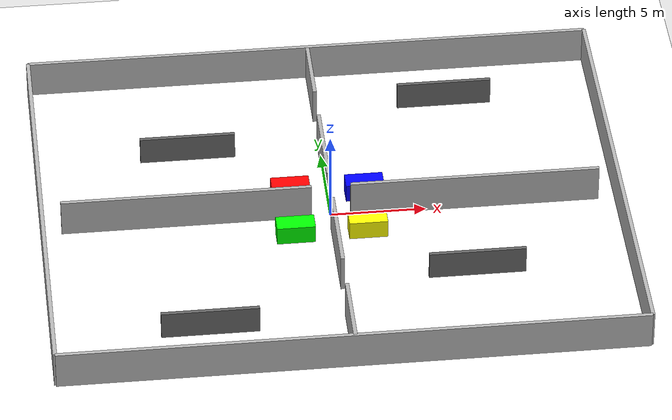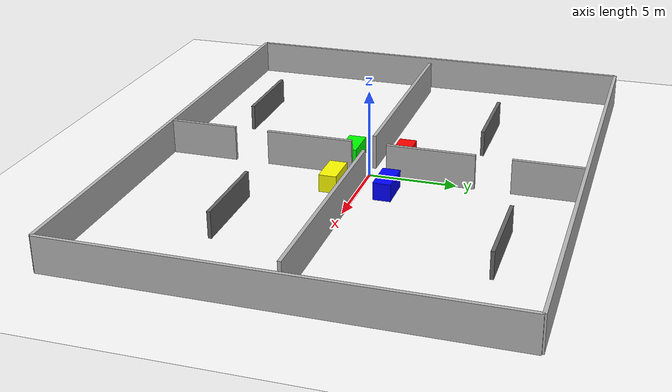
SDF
<sdf version='1.10'>
  <world name='warehouse_world'>
    <plugin name='gz::sim::systems::Physics' filename='gz-sim-physics-system'/>
    <plugin name='gz::sim::systems::UserCommands' filename='gz-sim-user-commands-system'/>
    <plugin name='gz::sim::systems::SceneBroadcaster' filename='gz-sim-scene-broadcaster-system'/>
    <gravity>0 0 -9.8000000000000007</gravity>
    <magnetic_field>5.5644999999999998e-06 2.2875799999999999e-05 -4.2388400000000002e-05</magnetic_field>
    <atmosphere type='adiabatic'/>
    <physics type='ode'>
      <max_step_size>0.001</max_step_size>
      <real_time_factor>1</real_time_factor>
      <real_time_update_rate>1000</real_time_update_rate>
    </physics>
    <scene>
      <ambient>0.400000006 0.400000006 0.400000006 1</ambient>
      <background>0.699999988 0.699999988 0.699999988 1</background>
      <shadows>true</shadows>
    </scene>
    <model name='white_floor'>
      <static>true</static>
      <pose>0 0 0 0 0 0</pose>
      <link name='floor_link'>
        <collision name='collision'>
          <geometry>
            <plane>
              <normal>0 0 1</normal>
              <size>40 40</size>
            </plane>
          </geometry>
          <surface>
            <friction>
              <ode/>
            </friction>
            <bounce/>
            <contact/>
          </surface>
        </collision>
        <visual name='visual'>
          <geometry>
            <plane>
              <normal>0 0 1</normal>
              <size>40 40</size>
            </plane>
          </geometry>
          <material>
            <ambient>1 1 1 1</ambient>
            <diffuse>1 1 1 1</diffuse>
            <specular>0.100000001 0.100000001 0.100000001 1</specular>
          </material>
        </visual>
        <pose>0 0 0 0 0 0</pose>
        <inertial>
          <pose>0 0 0 0 0 0</pose>
          <mass>1</mass>
          <inertia>
            <ixx>1</ixx>
            <ixy>0</ixy>
            <ixz>0</ixz>
            <iyy>1</iyy>
            <iyz>0</iyz>
            <izz>1</izz>
          </inertia>
        </inertial>
        <enable_wind>false</enable_wind>
      </link>
      <self_collide>false</self_collide>
    </model>
    <model name='wall_north'>
      <static>true</static>
      <pose>0 12 1 0 0 0</pose>
      <link name='link'>
        <collision name='collision'>
          <geometry>
            <box>
              <size>30 0.20000000000000001 2</size>
            </box>
          </geometry>
          <surface>
            <friction>
              <ode/>
            </friction>
            <bounce/>
            <contact/>
          </surface>
        </collision>
        <visual name='visual'>
          <geometry>
            <box>
              <size>30 0.20000000000000001 2</size>
            </box>
          </geometry>
        </visual>
        <pose>0 0 0 0 0 0</pose>
        <inertial>
          <pose>0 0 0 0 0 0</pose>
          <mass>1</mass>
          <inertia>
            <ixx>1</ixx>
            <ixy>0</ixy>
            <ixz>0</ixz>
            <iyy>1</iyy>
            <iyz>0</iyz>
            <izz>1</izz>
          </inertia>
        </inertial>
        <enable_wind>false</enable_wind>
      </link>
      <self_collide>false</self_collide>
    </model>
    <model name='wall_south'>
      <static>true</static>
      <pose>0 -12 1 0 0 0</pose>
      <link name='link'>
        <collision name='collision'>
          <geometry>
            <box>
              <size>30 0.20000000000000001 2</size>
            </box>
          </geometry>
          <surface>
            <friction>
              <ode/>
            </friction>
            <bounce/>
            <contact/>
          </surface>
        </collision>
        <visual name='visual'>
          <geometry>
            <box>
              <size>30 0.20000000000000001 2</size>
            </box>
          </geometry>
        </visual>
        <pose>0 0 0 0 0 0</pose>
        <inertial>
          <pose>0 0 0 0 0 0</pose>
          <mass>1</mass>
          <inertia>
            <ixx>1</ixx>
            <ixy>0</ixy>
            <ixz>0</ixz>
            <iyy>1</iyy>
            <iyz>0</iyz>
            <izz>1</izz>
          </inertia>
        </inertial>
        <enable_wind>false</enable_wind>
      </link>
      <self_collide>false</self_collide>
    </model>
    <model name='wall_east'>
      <static>true</static>
      <pose>15 0 1 0 0 0</pose>
      <link name='link'>
        <collision name='collision'>
          <geometry>
            <box>
              <size>0.20000000000000001 24 2</size>
            </box>
          </geometry>
          <surface>
            <friction>
              <ode/>
            </friction>
            <bounce/>
            <contact/>
          </surface>
        </collision>
        <visual name='visual'>
          <geometry>
            <box>
              <size>0.20000000000000001 24 2</size>
            </box>
          </geometry>
        </visual>
        <pose>0 0 0 0 0 0</pose>
        <inertial>
          <pose>0 0 0 0 0 0</pose>
          <mass>1</mass>
          <inertia>
            <ixx>1</ixx>
            <ixy>0</ixy>
            <ixz>0</ixz>
            <iyy>1</iyy>
            <iyz>0</iyz>
            <izz>1</izz>
          </inertia>
        </inertial>
        <enable_wind>false</enable_wind>
      </link>
      <self_collide>false</self_collide>
    </model>
    <model name='wall_west'>
      <static>true</static>
      <pose>-15 0 1 0 0 0</pose>
      <link name='link'>
        <collision name='collision'>
          <geometry>
            <box>
              <size>0.20000000000000001 24 2</size>
            </box>
          </geometry>
          <surface>
            <friction>
              <ode/>
            </friction>
            <bounce/>
            <contact/>
          </surface>
        </collision>
        <visual name='visual'>
          <geometry>
            <box>
              <size>0.20000000000000001 24 2</size>
            </box>
          </geometry>
        </visual>
        <pose>0 0 0 0 0 0</pose>
        <inertial>
          <pose>0 0 0 0 0 0</pose>
          <mass>1</mass>
          <inertia>
            <ixx>1</ixx>
            <ixy>0</ixy>
            <ixz>0</ixz>
            <iyy>1</iyy>
            <iyz>0</iyz>
            <izz>1</izz>
          </inertia>
        </inertial>
        <enable_wind>false</enable_wind>
      </link>
      <self_collide>false</self_collide>
    </model>
    <model name='mid_wall_left'>
      <static>true</static>
      <pose>-7.4949016571044922 0 1 0 0 0</pose>
      <link name='link'>
        <collision name='collision'>
          <geometry>
            <box>
              <size>13 0.20000000000000001 2</size>
            </box>
          </geometry>
          <surface>
            <friction>
              <ode/>
            </friction>
            <bounce/>
            <contact/>
          </surface>
        </collision>
        <visual name='visual'>
          <geometry>
            <box>
              <size>13 0.20000000000000001 2</size>
            </box>
          </geometry>
          <material>
            <ambient>0.699999988 0.699999988 0.699999988 1</ambient>
            <diffuse>0.699999988 0.699999988 0.699999988 1</diffuse>
          </material>
        </visual>
        <pose>0 0 0 0 0 0</pose>
        <inertial>
          <pose>0 0 0 0 0 0</pose>
          <mass>1</mass>
          <inertia>
            <ixx>1</ixx>
            <ixy>0</ixy>
            <ixz>0</ixz>
            <iyy>1</iyy>
            <iyz>0</iyz>
            <izz>1</izz>
          </inertia>
        </inertial>
        <enable_wind>false</enable_wind>
      </link>
      <self_collide>false</self_collide>
    </model>
    <model name='mid_wall_right'>
      <static>true</static>
      <pose>7.5518913269042969 0 1 0 0 0</pose>
      <link name='link'>
        <collision name='collision'>
          <geometry>
            <box>
              <size>13 0.20000000000000001 2</size>
            </box>
          </geometry>
          <surface>
            <friction>
              <ode/>
            </friction>
            <bounce/>
            <contact/>
          </surface>
        </collision>
        <visual name='visual'>
          <geometry>
            <box>
              <size>13 0.20000000000000001 2</size>
            </box>
          </geometry>
          <material>
            <ambient>0.699999988 0.699999988 0.699999988 1</ambient>
            <diffuse>0.699999988 0.699999988 0.699999988 1</diffuse>
          </material>
        </visual>
        <pose>0 0 0 0 0 0</pose>
        <inertial>
          <pose>0 0 0 0 0 0</pose>
          <mass>1</mass>
          <inertia>
            <ixx>1</ixx>
            <ixy>0</ixy>
            <ixz>0</ixz>
            <iyy>1</iyy>
            <iyz>0</iyz>
            <izz>1</izz>
          </inertia>
        </inertial>
        <enable_wind>false</enable_wind>
      </link>
      <self_collide>false</self_collide>
    </model>
    <model name='mid_vertical_top'>
      <static>true</static>
      <pose>0 10 1 0 0 0</pose>
      <link name='link'>
        <collision name='collision'>
          <geometry>
            <box>
              <size>0.20000000000000001 4 2</size>
            </box>
          </geometry>
          <surface>
            <friction>
              <ode/>
            </friction>
            <bounce/>
            <contact/>
          </surface>
        </collision>
        <visual name='visual'>
          <geometry>
            <box>
              <size>0.20000000000000001 4 2</size>
            </box>
          </geometry>
          <material>
            <ambient>0.699999988 0.699999988 0.699999988 1</ambient>
            <diffuse>0.699999988 0.699999988 0.699999988 1</diffuse>
          </material>
        </visual>
        <pose>0 0 0 0 0 0</pose>
        <inertial>
          <pose>0 0 0 0 0 0</pose>
          <mass>1</mass>
          <inertia>
            <ixx>1</ixx>
            <ixy>0</ixy>
            <ixz>0</ixz>
            <iyy>1</iyy>
            <iyz>0</iyz>
            <izz>1</izz>
          </inertia>
        </inertial>
        <enable_wind>false</enable_wind>
      </link>
      <self_collide>false</self_collide>
    </model>
    <model name='mid_vertical_upper'>
      <static>true</static>
      <pose>0 3.5 1 0 0 0</pose>
      <link name='link'>
        <collision name='collision'>
          <geometry>
            <box>
              <size>0.20000000000000001 5 2</size>
            </box>
          </geometry>
          <surface>
            <friction>
              <ode/>
            </friction>
            <bounce/>
            <contact/>
          </surface>
        </collision>
        <visual name='visual'>
          <geometry>
            <box>
              <size>0.20000000000000001 5 2</size>
            </box>
          </geometry>
          <material>
            <ambient>0.699999988 0.699999988 0.699999988 1</ambient>
            <diffuse>0.699999988 0.699999988 0.699999988 1</diffuse>
          </material>
        </visual>
        <pose>0 0 0 0 0 0</pose>
        <inertial>
          <pose>0 0 0 0 0 0</pose>
          <mass>1</mass>
          <inertia>
            <ixx>1</ixx>
            <ixy>0</ixy>
            <ixz>0</ixz>
            <iyy>1</iyy>
            <iyz>0</iyz>
            <izz>1</izz>
          </inertia>
        </inertial>
        <enable_wind>false</enable_wind>
      </link>
      <self_collide>false</self_collide>
    </model>
    <model name='mid_vertical_lower'>
      <static>true</static>
      <pose>0 -3.5278303623199463 1 0 0 0</pose>
      <link name='link'>
        <collision name='collision'>
          <geometry>
            <box>
              <size>0.20000000000000001 5 2</size>
            </box>
          </geometry>
          <surface>
            <friction>
              <ode/>
            </friction>
            <bounce/>
            <contact/>
          </surface>
        </collision>
        <visual name='visual'>
          <geometry>
            <box>
              <size>0.20000000000000001 5 2</size>
            </box>
          </geometry>
          <material>
            <ambient>0.699999988 0.699999988 0.699999988 1</ambient>
            <diffuse>0.699999988 0.699999988 0.699999988 1</diffuse>
          </material>
        </visual>
        <pose>0 0 0 0 0 0</pose>
        <inertial>
          <pose>0 0 0 0 0 0</pose>
          <mass>1</mass>
          <inertia>
            <ixx>1</ixx>
            <ixy>0</ixy>
            <ixz>0</ixz>
            <iyy>1</iyy>
            <iyz>0</iyz>
            <izz>1</izz>
          </inertia>
        </inertial>
        <enable_wind>false</enable_wind>
      </link>
      <self_collide>false</self_collide>
    </model>
    <model name='mid_vertical_bottom'>
      <static>true</static>
      <pose>0 -10 1 0 0 0</pose>
      <link name='link'>
        <collision name='collision'>
          <geometry>
            <box>
              <size>0.20000000000000001 4 2</size>
            </box>
          </geometry>
          <surface>
            <friction>
              <ode/>
            </friction>
            <bounce/>
            <contact/>
          </surface>
        </collision>
        <visual name='visual'>
          <geometry>
            <box>
              <size>0.20000000000000001 4 2</size>
            </box>
          </geometry>
          <material>
            <ambient>0.699999988 0.699999988 0.699999988 1</ambient>
            <diffuse>0.699999988 0.699999988 0.699999988 1</diffuse>
          </material>
        </visual>
        <pose>0 0 0 0 0 0</pose>
        <inertial>
          <pose>0 0 0 0 0 0</pose>
          <mass>1</mass>
          <inertia>
            <ixx>1</ixx>
            <ixy>0</ixy>
            <ixz>0</ixz>
            <iyy>1</iyy>
            <iyz>0</iyz>
            <izz>1</izz>
          </inertia>
        </inertial>
        <enable_wind>false</enable_wind>
      </link>
      <self_collide>false</self_collide>
    </model>
    <model name='blocker_tl'>
      <static>true</static>
      <pose>-7 5.5 0.75 0 0 0</pose>
      <link name='link'>
        <collision name='collision'>
          <geometry>
            <box>
              <size>5 0.20000000000000001 1.5</size>
            </box>
          </geometry>
          <surface>
            <friction>
              <ode/>
            </friction>
            <bounce/>
            <contact/>
          </surface>
        </collision>
        <visual name='visual'>
          <geometry>
            <box>
              <size>5 0.20000000000000001 1.5</size>
            </box>
          </geometry>
          <material>
            <ambient>0.400000006 0.400000006 0.400000006 1</ambient>
            <diffuse>0.400000006 0.400000006 0.400000006 1</diffuse>
          </material>
        </visual>
        <pose>0 0 0 0 0 0</pose>
        <inertial>
          <pose>0 0 0 0 0 0</pose>
          <mass>1</mass>
          <inertia>
            <ixx>1</ixx>
            <ixy>0</ixy>
            <ixz>0</ixz>
            <iyy>1</iyy>
            <iyz>0</iyz>
            <izz>1</izz>
          </inertia>
        </inertial>
        <enable_wind>false</enable_wind>
      </link>
      <self_collide>false</self_collide>
    </model>
    <model name='blocker_tr'>
      <static>true</static>
      <pose>7 8.8000000000000007 0.75 0 0 0</pose>
      <link name='link'>
        <collision name='collision'>
          <geometry>
            <box>
              <size>5 0.20000000000000001 1.5</size>
            </box>
          </geometry>
          <surface>
            <friction>
              <ode/>
            </friction>
            <bounce/>
            <contact/>
          </surface>
        </collision>
        <visual name='visual'>
          <geometry>
            <box>
              <size>5 0.20000000000000001 1.5</size>
            </box>
          </geometry>
          <material>
            <ambient>0.400000006 0.400000006 0.400000006 1</ambient>
            <diffuse>0.400000006 0.400000006 0.400000006 1</diffuse>
          </material>
        </visual>
        <pose>0 0 0 0 0 0</pose>
        <inertial>
          <pose>0 0 0 0 0 0</pose>
          <mass>1</mass>
          <inertia>
            <ixx>1</ixx>
            <ixy>0</ixy>
            <ixz>0</ixz>
            <iyy>1</iyy>
            <iyz>0</iyz>
            <izz>1</izz>
          </inertia>
        </inertial>
        <enable_wind>false</enable_wind>
      </link>
      <self_collide>false</self_collide>
    </model>
    <model name='blocker_bl'>
      <static>true</static>
      <pose>-7 -8.8000000000000007 0.75 0 0 0</pose>
      <link name='link'>
        <collision name='collision'>
          <geometry>
            <box>
              <size>5 0.20000000000000001 1.5</size>
            </box>
          </geometry>
          <surface>
            <friction>
              <ode/>
            </friction>
            <bounce/>
            <contact/>
          </surface>
        </collision>
        <visual name='visual'>
          <geometry>
            <box>
              <size>5 0.20000000000000001 1.5</size>
            </box>
          </geometry>
          <material>
            <ambient>0.400000006 0.400000006 0.400000006 1</ambient>
            <diffuse>0.400000006 0.400000006 0.400000006 1</diffuse>
          </material>
        </visual>
        <pose>0 0 0 0 0 0</pose>
        <inertial>
          <pose>0 0 0 0 0 0</pose>
          <mass>1</mass>
          <inertia>
            <ixx>1</ixx>
            <ixy>0</ixy>
            <ixz>0</ixz>
            <iyy>1</iyy>
            <iyz>0</iyz>
            <izz>1</izz>
          </inertia>
        </inertial>
        <enable_wind>false</enable_wind>
      </link>
      <self_collide>false</self_collide>
    </model>
    <model name='blocker_br'>
      <static>true</static>
      <pose>7 -5.5 0.75 0 0 0</pose>
      <link name='link'>
        <collision name='collision'>
          <geometry>
            <box>
              <size>5 0.20000000000000001 1.5</size>
            </box>
          </geometry>
          <surface>
            <friction>
              <ode/>
            </friction>
            <bounce/>
            <contact/>
          </surface>
        </collision>
        <visual name='visual'>
          <geometry>
            <box>
              <size>5 0.20000000000000001 1.5</size>
            </box>
          </geometry>
          <material>
            <ambient>0.400000006 0.400000006 0.400000006 1</ambient>
            <diffuse>0.400000006 0.400000006 0.400000006 1</diffuse>
          </material>
        </visual>
        <pose>0 0 0 0 0 0</pose>
        <inertial>
          <pose>0 0 0 0 0 0</pose>
          <mass>1</mass>
          <inertia>
            <ixx>1</ixx>
            <ixy>0</ixy>
            <ixz>0</ixz>
            <iyy>1</iyy>
            <iyz>0</iyz>
            <izz>1</izz>
          </inertia>
        </inertial>
        <enable_wind>false</enable_wind>
      </link>
      <self_collide>false</self_collide>
    </model>
    <model name='shelf_red'>
      <static>true</static>
      <pose>-1.9542900323867798 1.4638376235961914 0.65965098142623901 0 0 0</pose>
      <link name='link'>
        <collision name='collision'>
          <geometry>
            <box>
              <size>2 1 1</size>
            </box>
          </geometry>
          <surface>
            <friction>
              <ode/>
            </friction>
            <bounce/>
            <contact/>
          </surface>
        </collision>
        <visual name='visual'>
          <geometry>
            <box>
              <size>2 1 1</size>
            </box>
          </geometry>
          <material>
            <ambient>1 0 0 1</ambient>
            <diffuse>1 0 0 1</diffuse>
          </material>
        </visual>
        <pose>0 0 0 0 0 0</pose>
        <inertial>
          <pose>0 0 0 0 0 0</pose>
          <mass>1</mass>
          <inertia>
            <ixx>1</ixx>
            <ixy>0</ixy>
            <ixz>0</ixz>
            <iyy>1</iyy>
            <iyz>0</iyz>
            <izz>1</izz>
          </inertia>
        </inertial>
        <enable_wind>false</enable_wind>
      </link>
      <self_collide>false</self_collide>
    </model>
    <model name='shelf_blue'>
      <static>true</static>
      <pose>1.933419942855835 1.5431298017501831 0.5 0 0 0</pose>
      <link name='link'>
        <collision name='collision'>
          <geometry>
            <box>
              <size>2 1 1</size>
            </box>
          </geometry>
          <surface>
            <friction>
              <ode/>
            </friction>
            <bounce/>
            <contact/>
          </surface>
        </collision>
        <visual name='visual'>
          <geometry>
            <box>
              <size>2 1 1</size>
            </box>
          </geometry>
          <material>
            <ambient>0 0 1 1</ambient>
            <diffuse>0 0 1 1</diffuse>
          </material>
        </visual>
        <pose>0 0 0 0 0 0</pose>
        <inertial>
          <pose>0 0 0 0 0 0</pose>
          <mass>1</mass>
          <inertia>
            <ixx>1</ixx>
            <ixy>0</ixy>
            <ixz>0</ixz>
            <iyy>1</iyy>
            <iyz>0</iyz>
            <izz>1</izz>
          </inertia>
        </inertial>
        <enable_wind>false</enable_wind>
      </link>
      <self_collide>false</self_collide>
    </model>
    <model name='shelf_green'>
      <static>true</static>
      <pose>-1.979270339012146 -1.6006400585174561 0.5 0 0 0</pose>
      <link name='link'>
        <collision name='collision'>
          <geometry>
            <box>
              <size>2 1 1</size>
            </box>
          </geometry>
          <surface>
            <friction>
              <ode/>
            </friction>
            <bounce/>
            <contact/>
          </surface>
        </collision>
        <visual name='visual'>
          <geometry>
            <box>
              <size>2 1 1</size>
            </box>
          </geometry>
          <material>
            <ambient>0 1 0 1</ambient>
            <diffuse>0 1 0 1</diffuse>
          </material>
        </visual>
        <pose>0 0 0 0 0 0</pose>
        <inertial>
          <pose>0 0 0 0 0 0</pose>
          <mass>1</mass>
          <inertia>
            <ixx>1</ixx>
            <ixy>0</ixy>
            <ixz>0</ixz>
            <iyy>1</iyy>
            <iyz>0</iyz>
            <izz>1</izz>
          </inertia>
        </inertial>
        <enable_wind>false</enable_wind>
      </link>
      <self_collide>false</self_collide>
    </model>
    <model name='shelf_yellow'>
      <static>true</static>
      <pose>1.782520055770874 -1.5534704923629761 0.5 0 0 0</pose>
      <link name='link'>
        <collision name='collision'>
          <geometry>
            <box>
              <size>2 1 1</size>
            </box>
          </geometry>
          <surface>
            <friction>
              <ode/>
            </friction>
            <bounce/>
            <contact/>
          </surface>
        </collision>
        <visual name='visual'>
          <geometry>
            <box>
              <size>2 1 1</size>
            </box>
          </geometry>
          <material>
            <ambient>1 1 0 1</ambient>
            <diffuse>1 1 0 1</diffuse>
          </material>
        </visual>
        <pose>0 0 0 0 0 0</pose>
        <inertial>
          <pose>0 0 0 0 0 0</pose>
          <mass>1</mass>
          <inertia>
            <ixx>1</ixx>
            <ixy>0</ixy>
            <ixz>0</ixz>
            <iyy>1</iyy>
            <iyz>0</iyz>
            <izz>1</izz>
          </inertia>
        </inertial>
        <enable_wind>false</enable_wind>
      </link>
      <self_collide>false</self_collide>
    </model>
    <light name='warehouse_sun' type='directional'>
      <pose>0 0 10 0 0 0</pose>
      <cast_shadows>true</cast_shadows>
      <intensity>1</intensity>
      <direction>-0.5 0.10000000000000001 -0.90000000000000002</direction>
      <diffuse>0.800000012 0.800000012 0.800000012 1</diffuse>
      <specular>0.200000003 0.200000003 0.200000003 1</specular>
      <attenuation>
        <range>1000</range>
        <linear>0.01</linear>
        <constant>0.90000000000000002</constant>
        <quadratic>0.001</quadratic>
      </attenuation>
      <spot>
        <inner_angle>0</inner_angle>
        <outer_angle>0</outer_angle>
        <falloff>0</falloff>
      </spot>
    </light>
  </world>
</sdf>
